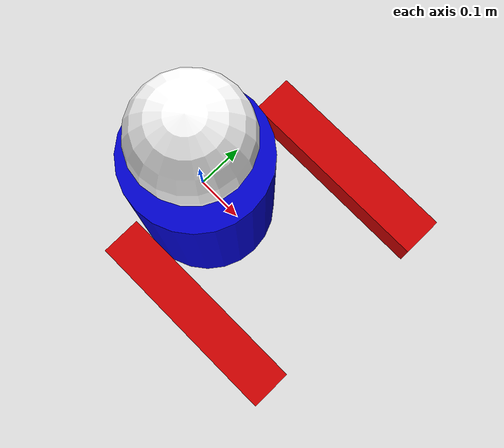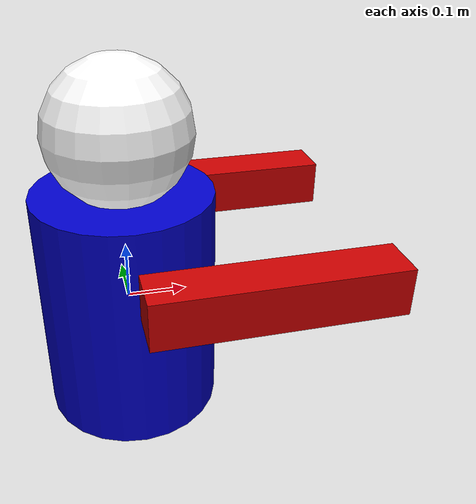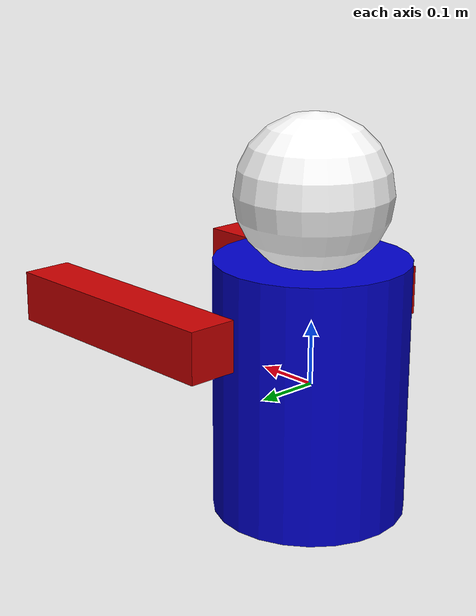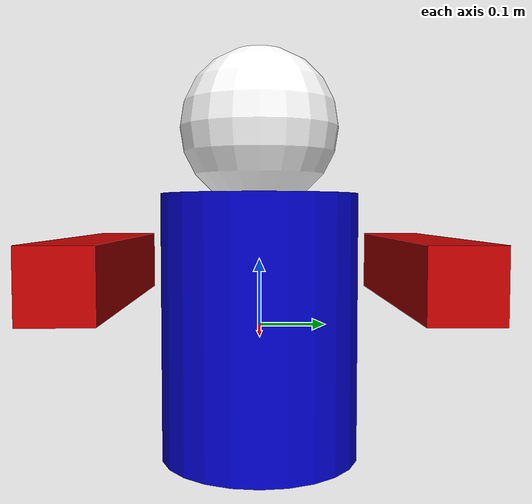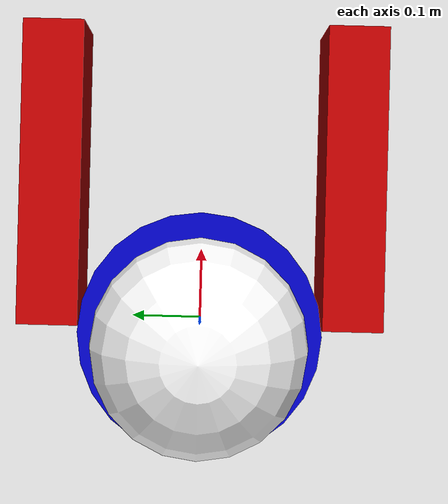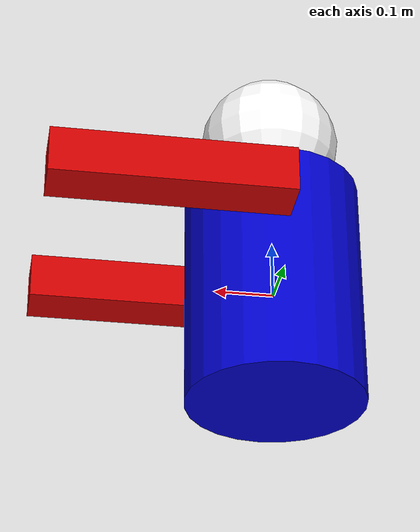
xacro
<?xml version="1.0"?>
<robot name="my_robot" xmlns:xacro="http://www.ros.org/wiki/xacro">

  <!-- Properties -->
  <xacro:property name="base_radius" value="0.15"/>
  <xacro:property name="base_length" value="0.4"/>
  <xacro:property name="head_radius" value="0.12"/>
  <xacro:property name="arm_length" value="0.4"/>
  <xacro:property name="arm_width" value="0.08"/>
  <xacro:property name="arm_height" value="0.08"/>

  <!-- Global Materials -->
  <material name="blue">
    <color rgba="0 0 0.8 1"/>
  </material>

  <material name="white">
    <color rgba="1 1 1 1"/>
  </material>

  <material name="red">
    <color rgba="0.8 0 0 1"/>
  </material>

  <!-- Reusable inertial macro -->
  <xacro:macro name="unit_inertial">
    <inertial>
      <mass value="1"/>
      <inertia ixx="1e-3" ixy="0" ixz="0"
               iyy="1e-3" iyz="0"
               izz="1e-3"/>
    </inertial>
  </xacro:macro>

  <!-- Arm macro -->
  <xacro:macro name="arm" params="name y_pos">
    <link name="${name}">
      <visual>
        <origin xyz="${arm_length/2} 0 0" rpy="0 0 0"/>
        <geometry>
          <box size="${arm_length} ${arm_width} ${arm_height}"/>
        </geometry>
        <material name="red"/>
      </visual>
      <collision>
        <origin xyz="${arm_length/2} 0 0" rpy="0 0 0"/>
        <geometry>
          <box size="${arm_length} ${arm_width} ${arm_height}"/>
        </geometry>
      </collision>
      <xacro:unit_inertial/>
    </link>

    <joint name="base_to_${name}" type="revolute">
      <parent link="base_link"/>
      <child link="${name}"/>
      <origin xyz="0 ${y_pos} 0.1" rpy="0 0 0"/>
      <axis xyz="1 0 0"/>
      <limit lower="-1.57" upper="1.57" effort="10" velocity="1.0"/>
    </joint>
  </xacro:macro>

  <!-- base_link -->
  <link name="base_link">
    <visual>
      <geometry>
        <cylinder radius="${base_radius}" length="${base_length}"/>
      </geometry>
      <material name="blue"/>
    </visual>
    <collision>
      <geometry>
        <cylinder radius="${base_radius}" length="${base_length}"/>
      </geometry>
    </collision>
    <xacro:unit_inertial/>
  </link>

  <!-- head -->
  <link name="head">
    <visual>
      <geometry>
        <sphere radius="${head_radius}"/>
      </geometry>
      <material name="white"/>
    </visual>
    <collision>
      <geometry>
        <sphere radius="${head_radius}"/>
      </geometry>
    </collision>
    <xacro:unit_inertial/>
  </link>

  <!-- base -> head -->
  <joint name="base_to_head" type="fixed">
    <parent link="base_link"/>
    <child link="head"/>
    <origin xyz="0 0 0.3" rpy="0 0 0"/>
  </joint>

  <!-- arms -->
  <xacro:arm name="left_arm" y_pos="0.2"/>
  <xacro:arm name="right_arm" y_pos="-0.2"/>

</robot>
